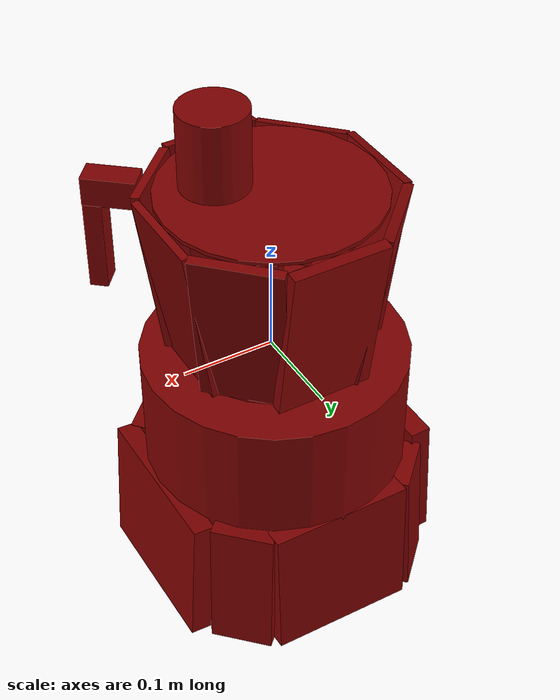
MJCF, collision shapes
<?xml version='1.0' encoding='UTF-8'?>
<mujoco model="model">
  <option timestep="0.002" gravity="0.0 0.0 -9.81"/>
  <compiler angle="radian"/>
  <asset>
    <mesh file="visuals/Blade001.obj" name="Blade001_vis"/>
    <mesh file="visuals/Body001.obj" name="Body001_vis"/>
    <mesh file="visuals/Button001.obj" name="Button001_vis"/>
    <mesh file="visuals/Jug001.obj" name="Jug001_vis"/>
    <mesh file="visuals/Jug001_Clear.obj" name="Jug001_Clear_vis"/>
    <mesh file="visuals/Knob001.obj" name="Knob001_vis"/>
    <mesh file="visuals/Lid001.obj" name="Lid001_vis"/>
    <texture file="visuals/T_BC001.png" name="Body001_material" type="2d"/>
    <material name="Body001_material" rgba="1 1 1 1.0" texture="Body001_material" shininess="0.1" specular="2"/>
    <texture file="visuals/T_BC001.png" name="Button001_material" type="2d"/>
    <material name="Button001_material" rgba="1 1 1 1.0" texture="Button001_material" shininess="0.1" specular="2"/>
    <texture file="visuals/T_BC001.png" name="Jug001_material" type="2d"/>
    <material name="Jug001_material" rgba="1 1 1 1.0" texture="Jug001_material" shininess="0.1" specular="2"/>
    <texture file="visuals/T_BC001.png" name="Blade001_material" type="2d"/>
    <material name="Blade001_material" rgba="1 1 1 1.0" texture="Blade001_material" shininess="0.1" specular="2"/>
    <texture file="visuals/T_BC001.png" name="Jug001_Clear_material" type="2d"/>
    <material name="Jug001_Clear_material" rgba="1 1 1 0.800000011920929" texture="Jug001_Clear_material" shininess="0.6880392730236053" specular="0.33333333333333337"/>
    <texture file="visuals/T_BC001.png" name="Lid001_material" type="2d"/>
    <material name="Lid001_material" rgba="1 1 1 1.0" texture="Lid001_material" shininess="0.1" specular="2"/>
    <texture file="visuals/T_BC001.png" name="Knob001_material" type="2d"/>
    <material name="Knob001_material" rgba="1 1 1 1.0" texture="Knob001_material" shininess="0.1" specular="2"/>
  </asset>
  <default>
    <default class="visual">
      <geom conaffinity="0" contype="0" group="1" type="mesh"/>
    </default>
    <default class="collision">
      <geom group="0" rgba="0.5 0 0 0.5"/>
    </default>
    <default class="spawn">
      <geom group="0" rgba="1 1 1 0.5" contype="0" conaffinity="0"/>
      <site group="0" rgba="1 1 1 0.5"/>
    </default>
    <default class="region">
      <geom group="1" conaffinity="0" contype="0" rgba="0 1 0 0"/>
    </default>
  </default>
  <worldbody>
    <body>
      <body name="object">
        <geom mesh="Body001_vis" type="mesh" solimp="0.998 0.998 0.001" solref="0.001 1" friction="0.95 0.3 0.1" class="visual" material="Body001_material"/>
        <geom class="collision" type="box" pos="-0.13592040538787842 0.0037273988127708435 -0.19115231931209564" size="0.011498981155455112 0.08904076367616653 0.07649284601211548" quat="0.9995970129966736 0.0 0.0283872801810503 0.0" density="1000.0"/>
        <geom class="collision" type="cylinder" pos="-0.0006695303600281477 0.006025772076100111 -0.1377994269132614" size="0.14031340181827545 0.13831281661987305" quat="1.0 0.0 0.0 0.0" density="1000.0"/>
        <geom class="collision" type="box" pos="0.13594456017017365 0.0017410973086953163 -0.20372824370861053" size="0.011498981155455112 0.08964601904153824 0.07649284601211548" quat="0.9995970129966736 0.0 -0.02838728204369545 0.0" density="1000.0"/>
        <geom class="collision" type="box" pos="-0.00023109465837478638 0.13891033828258514 -0.20372824370861053" size="0.011498981155455112 0.07770014554262161 0.07649284601211548" quat="0.706821858882904 0.020072845742106438 -0.020072847604751587 0.7068217992782593" density="1000.0"/>
        <geom class="collision" type="box" pos="0.09919562935829163 0.11469624936580658 -0.20402126014232635" size="0.011498980224132538 0.03311116248369217 0.07649284601211548" quat="0.9235072135925293 0.010863340459764004 -0.026226429268717766 0.38252919912338257" density="1000.0"/>
        <geom class="collision" type="box" pos="-0.10141343623399734 0.11469624191522598 -0.20402126014232635" size="0.011498981155455112 0.03311115875840187 0.07649284601211548" quat="0.9235072135925293 0.010863344185054302 0.026226438581943512 -0.3825291395187378" density="1000.0"/>
        <geom class="collision" type="box" pos="-0.10141343623399734 -0.10416512191295624 -0.20402126014232635" size="0.011498981155455112 0.03311115875840187 0.07649284601211548" quat="0.9235072135925293 -0.0108633479103446 0.026226449757814407 0.3825291693210602" density="1000.0"/>
        <geom class="collision" type="box" pos="0.09919562190771103 -0.10416512191295624 -0.20402126014232635" size="0.011498981155455112 0.03311115875840187 0.07649284601211548" quat="0.9235072135925293 -0.010863343253731728 -0.026226434856653214 -0.3825291395187378" density="1000.0"/>
        <geom class="collision" type="box" pos="-0.00023109473113436252 -0.12373938411474228 -0.20378313958644867" size="0.01053176075220108 0.07770014554262161 0.07649284601211548" quat="0.706821858882904 -0.020072845742106438 -0.020072847604751587 -0.7068217992782593" density="1000.0"/>
        <body name="Button001">
          <joint axis="0.0 0.9966602325439453 -0.08166057616472244" pos="0.0015080661978572607 -0.1461029201745987 -0.24573394656181335" limited="true" name="Button001_joint" range="0.0 0.003" type="slide" damping="1" frictionloss="1" armature=".01" stiffness="0.05" springref="-1"/>
          <geom mesh="Button001_vis" type="mesh" solimp="0.998 0.998 0.001" solref="0.001 1" friction="0.95 0.3 0.1" class="visual" material="Button001_material"/>
          <geom class="collision" type="cylinder" pos="0.0017029825830832124 -0.14668549597263336 -0.24569818377494812" size="0.010810940526425838 0.001899766270071268" quat="0.6749454736709595 -0.7377176880836487 0.005227870773524046 0.013924829661846161" density="1000.0"/>
        </body>
        <body name="Jug001">
          <joint axis="0.0 0.0 1.0" pos="0.013687863945960999 -0.0013010576367378235 0.0936969444155693" limited="true" name="Jug001_joint" range="0.0 0.1" type="slide" damping="1" frictionloss="1" armature=".01" stiffness="0.05"/>
          <geom mesh="Jug001_vis" type="mesh" solimp="0.998 0.998 0.001" solref="0.001 1" friction="0.95 0.3 0.1" class="visual" material="Jug001_material"/>
          <geom class="collision" type="cylinder" pos="-0.0010225761216133833 0.004611039999872446 0.12870901823043823" size="0.0086982948705554 0.05517284944653511" quat="1.0 0.0 0.0 0.0" density="1000.0"/>
          <geom class="collision" type="cylinder" pos="-7.491663563996553e-05 0.002362719736993313 0.017739633098244667" size="0.09389330446720123 0.016140157356858253" quat="1.0 0.0 0.0 0.0" density="1000.0"/>
          <geom class="collision" type="box" pos="0.11953453719615936 -0.09992367774248123 0.17314580082893372" size="0.013613344170153141 0.02776089869439602 0.015190458856523037" quat="0.9058365821838379 0.0 0.0 0.4236273169517517" density="1000.0"/>
          <geom class="collision" type="box" pos="0.1330793797969818 -0.11190032213926315 0.10917147248983383" size="0.013502799905836582 0.009573325514793396 0.04846155270934105" quat="0.9058365821838379 0.0 0.0 0.4236273169517517" density="1000.0"/>
          <geom class="collision" type="cylinder" pos="-0.0010225761216133833 0.004611039999872446 0.04985800012946129" size="0.01608540304005146 0.015532627701759338" quat="1.0 0.0 0.0 0.0" density="1000.0"/>
          <body name="Blade001">
            <joint axis="0.0 0.0 1.0" pos="-0.0016347086057066917 0.004108383320271969 0.07644142955541611" limited="false" name="Blade001_joint" range="0 360" type="hinge" damping="1" frictionloss="1" armature=".01" stiffness="0.05"/>
            <geom mesh="Blade001_vis" type="mesh" solimp="0.998 0.998 0.001" solref="0.001 1" friction="0.95 0.3 0.1" class="visual" material="Blade001_material"/>
            <geom class="collision" type="box" pos="-0.0018930812366306782 0.0028419052250683308 0.0714721530675888" size="0.015887247398495674 0.040357667952775955 0.0015504435868933797" quat="1.0 0.0 0.0 0.0" density="1000.0"/>
            <geom class="collision" type="box" pos="-0.03375625237822533 0.004726800136268139 0.0714721530675888" size="0.015887247398495674 0.014575560577213764 0.0015504435868933797" quat="1.0 0.0 0.0 0.0" density="1000.0"/>
            <geom class="collision" type="box" pos="0.029961012303829193 0.004726800136268139 0.0714721530675888" size="0.015887247398495674 0.014575560577213764 0.0015504435868933797" quat="1.0 0.0 0.0 0.0" density="1000.0"/>
            <geom class="collision" type="box" pos="0.06445124000310898 0.004726800136268139 0.08742443472146988" size="0.022117655724287033 0.014575560577213764 0.0015504439361393452" quat="0.9253676533699036 0.0 -0.37907081842422485 0.0" density="1000.0"/>
            <geom class="collision" type="box" pos="-0.06792760640382767 0.004726800136268139 0.08742443472146988" size="0.022117655724287033 0.014575560577213764 0.0015504439361393452" quat="4.008005873856746e-07 -0.9253676533699036 1.641853515366165e-07 0.37907081842422485" density="1000.0"/>
            <geom class="collision" type="box" pos="-0.0017381906509399414 0.07073244452476501 0.06184271723031998" size="0.030708279460668564 0.014575560577213764 0.001550444052554667" quat="0.13120178878307343 0.6948279738426208 0.6948282718658447 -0.13120168447494507" density="1000.0"/>
            <geom class="collision" type="box" pos="-0.0017381906509399414 -0.062485046684741974 0.06184271723031998" size="0.030708283185958862 0.014575560577213764 0.001550444052554667" quat="0.6948281526565552 0.13120175898075104 -0.13120178878307343 0.6948280930519104" density="1000.0"/>
          </body>
          <body name="Jug001_Clear">
            <geom class="region" name="reg_int" type="box" pos="-0.00048159435391426086 0.004112213850021362 0.09800328873097897" size="0.09438950195908546 0.09448947012424469 0.0897305253893137"/>
            <geom mesh="Jug001_Clear_vis" type="mesh" solimp="0.998 0.998 0.001" solref="0.001 1" friction="0.95 0.3 0.1" class="visual" material="Jug001_Clear_material"/>
            <geom class="collision" type="box" pos="0.0008297453750856221 0.11181112378835678 0.09796815365552902" size="0.05125673860311508 0.006122444290667772 0.08999137580394745" quat="0.9973172545433044 -0.07320006936788559 0.0 0.0" density="1000.0"/>
            <geom class="collision" type="box" pos="0.10576702654361725 0.0012909905053675175 0.09742537140846252" size="0.051528241485357285 0.0040107835084199905 0.08897125720977783" quat="0.7052098512649536 -0.0517602264881134 0.051760219037532806 -0.7052097916603088" density="1000.0"/>
            <geom class="collision" type="box" pos="0.0008297538151964545 -0.10808197408914566 0.0994843989610672" size="0.05125673860311508 0.005388589575886726 0.08828059583902359" quat="7.52953610572149e-08 -5.526434421199156e-09 0.07320006936788559 -0.9973172545433044" density="1000.0"/>
            <geom class="collision" type="box" pos="-0.10705412924289703 0.001290972693823278 0.10076386481523514" size="0.051528241485357285 0.00485691474750638 0.08673109114170074" quat="0.7052098512649536 -0.0517602264881134 -0.0517602264881134 0.7052097916603088" density="1000.0"/>
            <geom class="collision" type="box" pos="0.07684595882892609 0.07730719447135925 0.098451167345047" size="0.045730192214250565 0.005176766309887171 0.08872608095407486" quat="0.9214010238647461 -0.06762798875570297 0.028012456372380257 -0.38165685534477234" density="1000.0"/>
            <geom class="collision" type="box" pos="-0.07620351761579514 0.07832423597574234 0.09698982536792755" size="0.048428039997816086 0.005164290312677622 0.09014152735471725" quat="0.9214010238647461 -0.06762799620628357 -0.028012439608573914 0.38165685534477234" density="1000.0"/>
            <geom class="collision" type="box" pos="-0.0750758945941925 -0.07461463660001755 0.09696824848651886" size="0.04781375452876091 0.004935937002301216 0.09029550850391388" quat="0.38165679574012756 -0.028012432157993317 -0.06762800365686417 0.9214010238647461" density="1000.0"/>
            <geom class="collision" type="box" pos="0.07701180130243301 -0.07489105314016342 0.10008390247821808" size="0.04515534266829491 0.0049200886860489845 0.08869536966085434" quat="0.38165679574012756 -0.028012439608573914 0.06762800365686417 -0.9214010238647461" density="1000.0"/>
          </body>
          <body name="Lid001">
            <joint axis="0.0 0.0 1.0" pos="-0.001333773136138916 0.003535401076078415 0.2238895297050476" limited="true" name="Lid001_joint" range="0.0 0.1" type="slide" damping="1" frictionloss="1" armature=".01" stiffness="0.05"/>
            <geom mesh="Lid001_vis" type="mesh" solimp="0.998 0.998 0.001" solref="0.001 1" friction="0.95 0.3 0.1" class="visual" material="Lid001_material"/>
            <geom class="collision" type="cylinder" pos="0.0008297250024043024 0.0012909809593111277 0.18676124513149261" size="0.1136881560087204 0.0019425016362220049" quat="1.0 0.0 0.0 0.0" density="1000.0"/>
            <geom class="collision" type="cylinder" pos="0.04231317341327667 -0.03363310173153877 0.2304873764514923" size="0.03576243296265602 0.041802436113357544" quat="1.0 0.0 0.0 0.0" density="1000.0"/>
          </body>
        </body>
        <body name="Knob001">
          <joint axis="0.0 0.995547354221344 -0.0942634716629982" pos="0.0019797496497631073 -0.14561666548252106 -0.178142249584198" limited="true" name="Knob001_joint" range="0.0 5.061454830783556" type="hinge" damping="0.05" armature="0.001" springref="-0.01"/>
          <geom mesh="Knob001_vis" type="mesh" solimp="0.998 0.998 0.001" solref="0.001 1" friction="0.95 0.3 0.1" class="visual" material="Knob001_material"/>
          <geom class="collision" type="box" pos="0.0016942783258855343 -0.1491798758506775 -0.177858367562294" size="0.00748627120628953 0.005762665998190641 0.030705107375979424" quat="0.8715516328811646 -0.04367949813604355 -0.4882701337337494 0.009062026627361774" density="1000.0"/>
          <geom class="collision" type="cylinder" pos="0.0016495747258886695 -0.14065101742744446 -0.17891089618206024" size="0.032203298062086105 0.002435933565720916" quat="0.7291671633720398 0.6755023002624512 -0.07591302692890167 0.07905163615942001" density="1000.0"/>
        </body>
        <geom class="region" name="reg_main" type="box" pos="-3.725290298461914e-09 0.004825592041015625 0.0" size="0.15166045725345612 0.15185335278511047 0.273357093334198"/>
      </body>
    </body>
  </worldbody>
  <actuator>
    <motor name="Button001_joint_actuator" joint="Button001_joint" gear="0.5"/>
    <motor name="Jug001_joint_actuator" joint="Jug001_joint" gear="0.5"/>
    <motor name="Knob001_joint_actuator" joint="Knob001_joint" gear="0.5"/>
    <motor name="Blade001_joint_actuator" joint="Blade001_joint" gear="20"/>
    <motor name="Lid001_joint_actuator" joint="Lid001_joint" gear="0.5"/>
  </actuator>
</mujoco>
